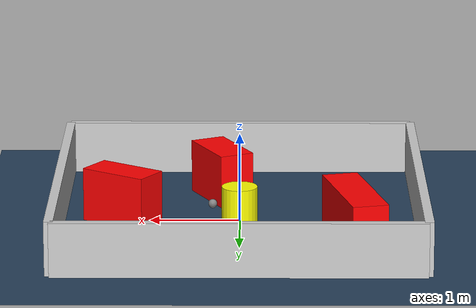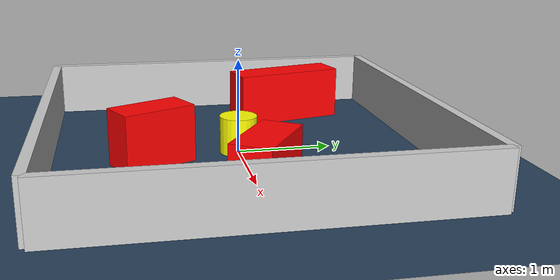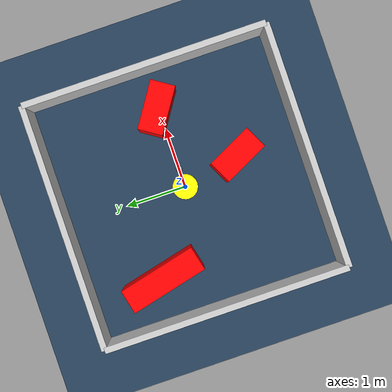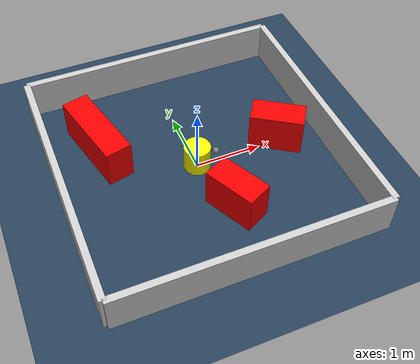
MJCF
<?xml version="1.0" ?>
<mujoco model="generated_environment">
  <option timestep="0.01" integrator="RK4" cone="elliptic"/>
  <default>
    <geom density="1"/>
  </default>
  <asset>
    <texture builtin="gradient" height="3072" rgb1="0.3 0.5 0.7" rgb2="0 0 0" type="skybox" width="512"/>
    <texture builtin="checker" height="300" mark="edge" markrgb="0.8 0.8 0.8" name="groundplane" rgb1="0.2 0.3 0.4" rgb2="0.1 0.2 0.3" type="2d" width="300"/>
    <material name="groundplane" reflectance="0.2" texrepeat="5 5" texture="groundplane" texuniform="true"/>
    <material name="robot" rgba="0.0 1.0 0.0 1"/>
  </asset>
  <worldbody>
    <light dir="0 0 -1" directional="true" pos="0 0 1.5"/>
    <geom condim="4" friction="1.0 0.005 0.001" material="groundplane" name="floor" size="0 0 0.05" type="plane"/>
    <body name="walls">
      <geom name="wall_1" condim="4" pos="-2.0 0.0 0.3" rgba="0.800000011920929 0.800000011920929 0.800000011920929 1.0" size="0.05 2.0 0.3" type="box"/>
      <geom name="wall_2" condim="4" pos="2.0 0.0 0.3" rgba="0.800000011920929 0.800000011920929 0.800000011920929 1.0" size="0.05 2.0 0.3" type="box"/>
      <geom name="wall_3" condim="4" pos="0.0 -2.0 0.3" rgba="0.800000011920929 0.800000011920929 0.800000011920929 1.0" size="2.0 0.05 0.3" type="box"/>
      <geom name="wall_4" condim="4" pos="0.0 2.0 0.3" rgba="0.800000011920929 0.800000011920929 0.800000011920929 1.0" size="2.0 0.05 0.3" type="box"/>
    </body>
    <body name="robot">
      <joint name="joint_x" type="slide" pos="0 0 0" axis="1 0 0"/>
      <joint name="joint_y" type="slide" pos="0 0 0" axis="0 1 0"/>
      <geom name="robot" type="sphere" pos="0.3 0.0 0.2" size="0.05" mass="5." friction="1.0 0.005 0.0001" condim="4" rgba="0.5 0.5 0.5 1.0"/>
      <site name="sensor_ball"/>
    </body>
    <body name="obstacle_movable_1">
      <geom name="obstacle_movable_1" condim="4" pos="0.0 0.0 0.2" euler="0 0 0.0" friction="1.0 0.005 0.001" rgba="1.0 1.0 0.0 1.0" size="0.2 0.2 0.0" type="cylinder" mass="0.1"/>
      <joint type="free"/>
    </body>
    <body name="obstacle_2_static">
      <geom name="obstacle_2_static" condim="4" pos="1.305252559589462 0.027243883497744203 0.3" euler="0 0 326.6127174238442" friction="1.0 0.005 0.001" rgba="1 0 0 1" size="0.3974470783760065 0.2 0.3" type="box"/>
    </body>
    <body name="obstacle_3_static">
      <geom name="obstacle_3_static" condim="4" pos="-1.2593137715790588 0.7934443047910402 0.3" euler="0 0 103.53728200507133" friction="1.0 0.005 0.001" rgba="1 0 0 1" size="0.6397869120939779 0.2 0.3" type="box"/>
    </body>
    <body name="obstacle_4_static">
      <geom name="obstacle_4_static" condim="4" pos="0.2056293326246208 -0.9295129136010513 0.3" euler="0 0 296.18598619475904" friction="1.0 0.005 0.001" rgba="1 0 0 1" size="0.3932145641272082 0.2 0.3" type="box"/>
    </body>
  </worldbody>
  <actuator>
    <motor name="actuator_x" joint="joint_x" gear="1" ctrlrange="-1 1"/>
    <motor name="actuator_y" joint="joint_y" gear="1" ctrlrange="-1 1"/>
  </actuator>
</mujoco>
